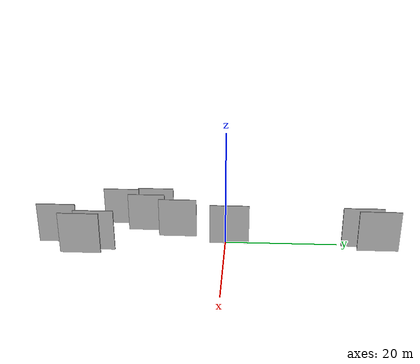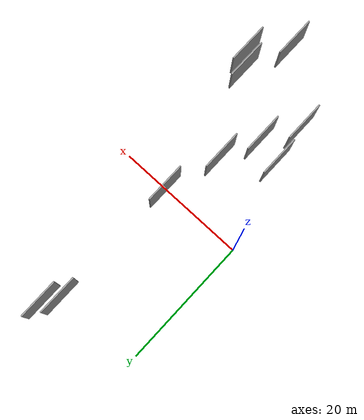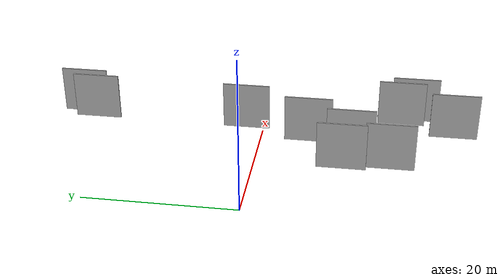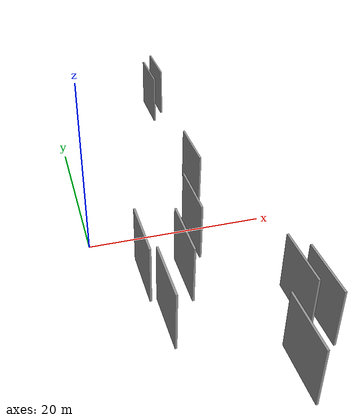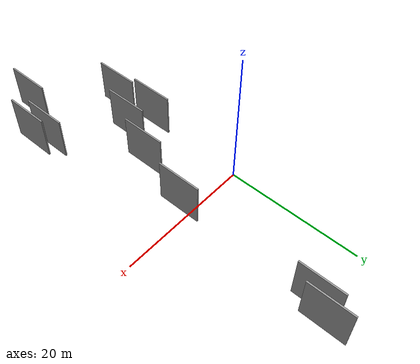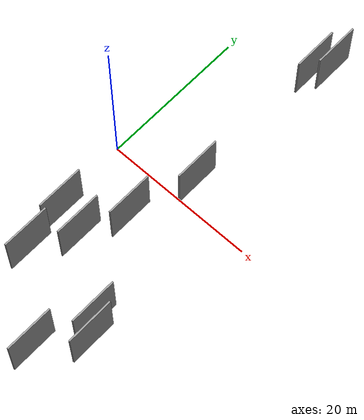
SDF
<sdf version="1.6">
 <world name="default">
  <scene>
   <sky><clouds><speed>12</speed></clouds></sky>
   <ambient>0.4 0.4 0.4 1</ambient>
   <background>0.7 0.7 0.7 1</background>
   <shadows>1</shadows>
  </scene>
  <gravity>0 0 -9.8066</gravity>
  <magnetic_field>6e-06 2.3e-05 -4.2e-05</magnetic_field>
  <physics default="0" name="default_physics" type="ode">
   <ode>
    <solver>
     <type>quick</type>
     <iters>10</iters>
     <sor>1.0</sor>
     <use_dynamic_moi_rescaling>0</use_dynamic_moi_rescaling>
    </solver>
    <constraints>
     <cfm>0</cfm>
     <erp>0.2</erp>
     <contact_max_correcting_vel>100</contact_max_correcting_vel>
     <contact_surface_layer>0.001</contact_surface_layer>
    </constraints>
   </ode>
   <max_step_size>0.004</max_step_size>
   <real_time_factor>1</real_time_factor>
   <real_time_update_rate>250</real_time_update_rate>
  </physics>
  <light name="sun" type="directional">
   <pose>0 0 10 0 0 0</pose>
   <diffuse>0.8 0.8 0.8 1</diffuse>
   <specular>0.2 0.2 0.2 1</specular>
   <attenuation>
    <range>1000</range>
    <constant>0.9</constant>
    <linear>0.01</linear>
    <quadratic>0.001</quadratic>
   </attenuation>
   <direction>-0.5 0.1 -0.9</direction>
  </light>
  <model name="grey_wall_1">
   <static>1</static>
   <pose>3.4616 -11.7984 5.0 0.000000 0.000000 1.570796</pose>
   <link name="link">
    <pose>0 0 3.00 0 0 0</pose>
    <collision name="collision"><geometry><box><size>6.00 0.2 6.00</size></box></geometry></collision>
    <visual name="visual">
     <cast_shadows>0</cast_shadows>
     <geometry><box><size>6.00 0.2 6.00</size></box></geometry>
     <material>
      <script>
       <uri>model://grey_wall/materials/scripts</uri>
       <uri>model://grey_wall/materials/textures</uri>
       <name>vrc/grey_wall</name>
      </script>
     </material>
    </visual>
   </link>
  </model>
  <model name="grey_wall_2">
   <static>1</static>
   <pose>15.5141 -18.8661 5.0 0.000000 0.000000 1.570796</pose>
   <link name="link">
    <pose>0 0 3.00 0 0 0</pose>
    <collision name="collision"><geometry><box><size>6.00 0.2 6.00</size></box></geometry></collision>
    <visual name="visual">
     <cast_shadows>0</cast_shadows>
     <geometry><box><size>6.00 0.2 6.00</size></box></geometry>
     <material>
      <script>
       <uri>model://grey_wall/materials/scripts</uri>
       <uri>model://grey_wall/materials/textures</uri>
       <name>vrc/grey_wall</name>
      </script>
     </material>
    </visual>
   </link>
  </model>
  <model name="grey_wall_3">
   <static>1</static>
   <pose>16.8457 -20.6471 5.0 0.000000 0.000000 1.570796</pose>
   <link name="link">
    <pose>0 0 3.00 0 0 0</pose>
    <collision name="collision"><geometry><box><size>6.00 0.2 6.00</size></box></geometry></collision>
    <visual name="visual">
     <cast_shadows>0</cast_shadows>
     <geometry><box><size>6.00 0.2 6.00</size></box></geometry>
     <material>
      <script>
       <uri>model://grey_wall/materials/scripts</uri>
       <uri>model://grey_wall/materials/textures</uri>
       <name>vrc/grey_wall</name>
      </script>
     </material>
    </visual>
   </link>
  </model>
  <model name="grey_wall_4">
   <static>1</static>
   <pose>9.5422 -7.2711 5.0 0.000000 0.000000 1.570796</pose>
   <link name="link">
    <pose>0 0 3.00 0 0 0</pose>
    <collision name="collision"><geometry><box><size>6.00 0.2 6.00</size></box></geometry></collision>
    <visual name="visual">
     <cast_shadows>0</cast_shadows>
     <geometry><box><size>6.00 0.2 6.00</size></box></geometry>
     <material>
      <script>
       <uri>model://grey_wall/materials/scripts</uri>
       <uri>model://grey_wall/materials/textures</uri>
       <name>vrc/grey_wall</name>
      </script>
     </material>
    </visual>
   </link>
  </model>
  <model name="grey_wall_5">
   <static>1</static>
   <pose>12.2059 20.9196 5.0 0.000000 0.000000 1.570796</pose>
   <link name="link">
    <pose>0 0 3.00 0 0 0</pose>
    <collision name="collision"><geometry><box><size>6.00 0.2 6.00</size></box></geometry></collision>
    <visual name="visual">
     <cast_shadows>0</cast_shadows>
     <geometry><box><size>6.00 0.2 6.00</size></box></geometry>
     <material>
      <script>
       <uri>model://grey_wall/materials/scripts</uri>
       <uri>model://grey_wall/materials/textures</uri>
       <name>vrc/grey_wall</name>
      </script>
     </material>
    </visual>
   </link>
  </model>
  <model name="grey_wall_6">
   <static>1</static>
   <pose>7.1283 -12.7218 5.0 0.000000 0.000000 1.570796</pose>
   <link name="link">
    <pose>0 0 3.00 0 0 0</pose>
    <collision name="collision"><geometry><box><size>6.00 0.2 6.00</size></box></geometry></collision>
    <visual name="visual">
     <cast_shadows>0</cast_shadows>
     <geometry><box><size>6.00 0.2 6.00</size></box></geometry>
     <material>
      <script>
       <uri>model://grey_wall/materials/scripts</uri>
       <uri>model://grey_wall/materials/textures</uri>
       <name>vrc/grey_wall</name>
      </script>
     </material>
    </visual>
   </link>
  </model>
  <model name="grey_wall_7">
   <static>1</static>
   <pose>4.1325 -17.5646 5.0 0.000000 0.000000 1.570796</pose>
   <link name="link">
    <pose>0 0 3.00 0 0 0</pose>
    <collision name="collision"><geometry><box><size>6.00 0.2 6.00</size></box></geometry></collision>
    <visual name="visual">
     <cast_shadows>0</cast_shadows>
     <geometry><box><size>6.00 0.2 6.00</size></box></geometry>
     <material>
      <script>
       <uri>model://grey_wall/materials/scripts</uri>
       <uri>model://grey_wall/materials/textures</uri>
       <name>vrc/grey_wall</name>
      </script>
     </material>
    </visual>
   </link>
  </model>
  <model name="grey_wall_8">
   <static>1</static>
   <pose>13.6401 22.9381 5.0 0.000000 0.000000 1.570796</pose>
   <link name="link">
    <pose>0 0 3.00 0 0 0</pose>
    <collision name="collision"><geometry><box><size>6.00 0.2 6.00</size></box></geometry></collision>
    <visual name="visual">
     <cast_shadows>0</cast_shadows>
     <geometry><box><size>6.00 0.2 6.00</size></box></geometry>
     <material>
      <script>
       <uri>model://grey_wall/materials/scripts</uri>
       <uri>model://grey_wall/materials/textures</uri>
       <name>vrc/grey_wall</name>
      </script>
     </material>
    </visual>
   </link>
  </model>
  <model name="grey_wall_9">
   <static>1</static>
   <pose>12.0247 0.9772 5.0 0.000000 0.000000 1.570796</pose>
   <link name="link">
    <pose>0 0 3.00 0 0 0</pose>
    <collision name="collision"><geometry><box><size>6.00 0.2 6.00</size></box></geometry></collision>
    <visual name="visual">
     <cast_shadows>0</cast_shadows>
     <geometry><box><size>6.00 0.2 6.00</size></box></geometry>
     <material>
      <script>
       <uri>model://grey_wall/materials/scripts</uri>
       <uri>model://grey_wall/materials/textures</uri>
       <name>vrc/grey_wall</name>
      </script>
     </material>
    </visual>
   </link>
  </model>
  <model name="grey_wall_10">
   <static>1</static>
   <pose>12.8223 -25.4758 5.0 0.000000 0.000000 1.570796</pose>
   <link name="link">
    <pose>0 0 3.00 0 0 0</pose>
    <collision name="collision"><geometry><box><size>6.00 0.2 6.00</size></box></geometry></collision>
    <visual name="visual">
     <cast_shadows>0</cast_shadows>
     <geometry><box><size>6.00 0.2 6.00</size></box></geometry>
     <material>
      <script>
       <uri>model://grey_wall/materials/scripts</uri>
       <uri>model://grey_wall/materials/textures</uri>
       <name>vrc/grey_wall</name>
      </script>
     </material>
    </visual>
   </link>
  </model>
 </world>
</sdf>
